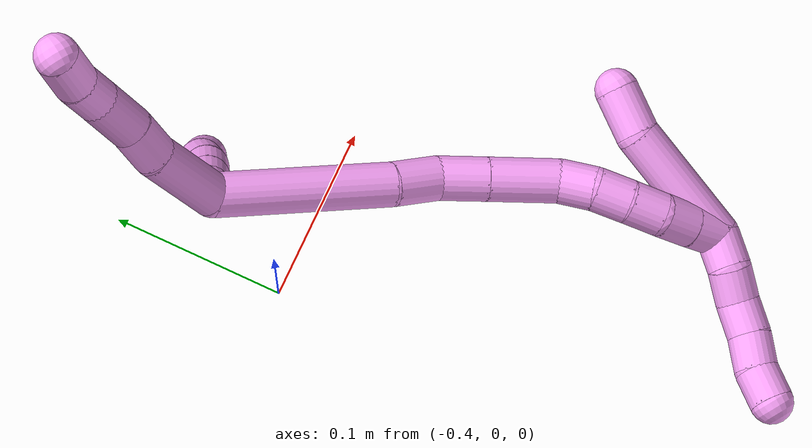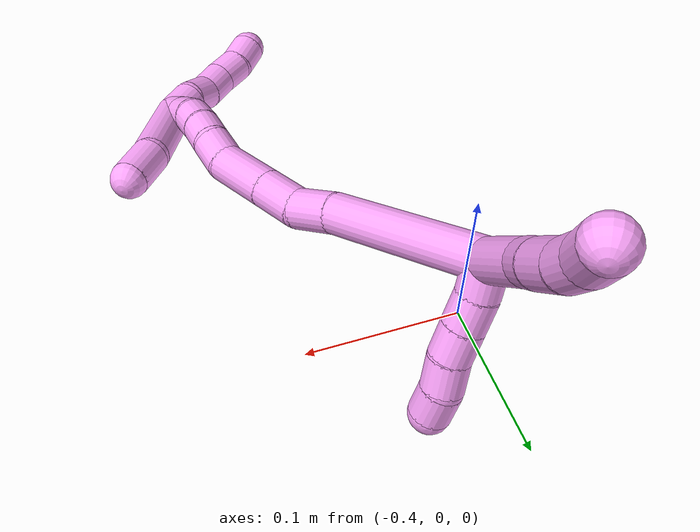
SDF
<sdf version="1.7">
 <world name="default">
  <model name="4">
   <static>0</static>
   <link name="4">
    <collision name="collision-cylinder-e_1_2_8">
     <pose>-0.010649 0.015468 -0.015764 -2.36567 -0.44928 1.01963</pose>
     <geometry><cylinder><radius>0.0125</radius><length>0.049036</length></cylinder></geometry>
     <surface>
      <friction><ode><mu>1.16</mu><mu2>1.16</mu2><slip1>0</slip1><slip2>0</slip2></ode></friction>
      <contact><ode><kp>1e+06</kp><kd>1</kd><max_vel>0</max_vel><min_depth>0.001</min_depth></ode></contact>
     </surface>
    </collision>
    <visual name="visual-cylinder-e_1_2_8">
     <pose>-0.010649 0.015468 -0.015764 -2.36567 -0.44928 1.01963</pose>
     <geometry><cylinder><radius>0.0125</radius><length>0.049036</length></cylinder></geometry>
     <material><ambient>1 0.65098 0.996078 1</ambient></material>
    </visual>
    <collision name="collision-cylinder-e_2_8_9">
     <pose>-0.024321 0.038757 -0.040198 -2.40765 -0.253373 0.639943</pose>
     <geometry><cylinder><radius>0.0125</radius><length>0.024125</length></cylinder></geometry>
     <surface>
      <friction><ode><mu>1.16</mu><mu2>1.16</mu2><slip1>0</slip1><slip2>0</slip2></ode></friction>
      <contact><ode><kp>1e+06</kp><kd>1</kd><max_vel>0</max_vel><min_depth>0.001</min_depth></ode></contact>
     </surface>
    </collision>
    <visual name="visual-cylinder-e_2_8_9">
     <pose>-0.024321 0.038757 -0.040198 -2.40765 -0.253373 0.639943</pose>
     <geometry><cylinder><radius>0.0125</radius><length>0.024125</length></cylinder></geometry>
     <material><ambient>1 0.65098 0.996078 1</ambient></material>
    </visual>
    <collision name="collision-cylinder-e_3_9_10">
     <pose>-0.032834 0.056149 -0.058736 -2.37142 -0.37996 0.885971</pose>
     <geometry><cylinder><radius>0.0125</radius><length>0.029604</length></cylinder></geometry>
     <surface>
      <friction><ode><mu>1.16</mu><mu2>1.16</mu2><slip1>0</slip1><slip2>0</slip2></ode></friction>
      <contact><ode><kp>1e+06</kp><kd>1</kd><max_vel>0</max_vel><min_depth>0.001</min_depth></ode></contact>
     </surface>
    </collision>
    <visual name="visual-cylinder-e_3_9_10">
     <pose>-0.032834 0.056149 -0.058736 -2.37142 -0.37996 0.885971</pose>
     <geometry><cylinder><radius>0.0125</radius><length>0.029604</length></cylinder></geometry>
     <material><ambient>1 0.65098 0.996078 1</ambient></material>
    </visual>
    <collision name="collision-cylinder-e_4_10_11">
     <pose>-0.042207 0.073732 -0.074535 -2.2081 -0.371436 0.71381</pose>
     <geometry><cylinder><radius>0.0125</radius><length>0.021396</length></cylinder></geometry>
     <surface>
      <friction><ode><mu>1.16</mu><mu2>1.16</mu2><slip1>0</slip1><slip2>0</slip2></ode></friction>
      <contact><ode><kp>1e+06</kp><kd>1</kd><max_vel>0</max_vel><min_depth>0.001</min_depth></ode></contact>
     </surface>
    </collision>
    <visual name="visual-cylinder-e_4_10_11">
     <pose>-0.042207 0.073732 -0.074535 -2.2081 -0.371436 0.71381</pose>
     <geometry><cylinder><radius>0.0125</radius><length>0.021396</length></cylinder></geometry>
     <material><ambient>1 0.65098 0.996078 1</ambient></material>
    </visual>
    <collision name="collision-cylinder-e_5_11_6">
     <pose>-0.04862 0.092088 -0.087781 -2.18633 -0.197072 0.377432</pose>
     <geometry><cylinder><radius>0.0125</radius><length>0.025839</length></cylinder></geometry>
     <surface>
      <friction><ode><mu>1.16</mu><mu2>1.16</mu2><slip1>0</slip1><slip2>0</slip2></ode></friction>
      <contact><ode><kp>1e+06</kp><kd>1</kd><max_vel>0</max_vel><min_depth>0.001</min_depth></ode></contact>
     </surface>
    </collision>
    <visual name="visual-cylinder-e_5_11_6">
     <pose>-0.04862 0.092088 -0.087781 -2.18633 -0.197072 0.377432</pose>
     <geometry><cylinder><radius>0.0125</radius><length>0.025839</length></cylinder></geometry>
     <material><ambient>1 0.65098 0.996078 1</ambient></material>
    </visual>
    <collision name="collision-cylinder-e_1_2_12">
     <pose>0.00167 -0.00931 -0.003245 1.90615 0.167749 0.235567</pose>
     <geometry><cylinder><radius>0.0125</radius><length>0.02</length></cylinder></geometry>
     <surface>
      <friction><ode><mu>1.16</mu><mu2>1.16</mu2><slip1>0</slip1><slip2>0</slip2></ode></friction>
      <contact><ode><kp>1e+06</kp><kd>1</kd><max_vel>0</max_vel><min_depth>0.001</min_depth></ode></contact>
     </surface>
    </collision>
    <visual name="visual-cylinder-e_1_2_12">
     <pose>0.00167 -0.00931 -0.003245 1.90615 0.167749 0.235567</pose>
     <geometry><cylinder><radius>0.0125</radius><length>0.02</length></cylinder></geometry>
     <material><ambient>1 0.65098 0.996078 1</ambient></material>
    </visual>
    <collision name="collision-cylinder-e_2_12_13">
     <pose>0.006227 -0.027572 -0.009887 1.93358 0.292973 0.421296</pose>
     <geometry><cylinder><radius>0.0125</radius><length>0.02</length></cylinder></geometry>
     <surface>
      <friction><ode><mu>1.16</mu><mu2>1.16</mu2><slip1>0</slip1><slip2>0</slip2></ode></friction>
      <contact><ode><kp>1e+06</kp><kd>1</kd><max_vel>0</max_vel><min_depth>0.001</min_depth></ode></contact>
     </surface>
    </collision>
    <visual name="visual-cylinder-e_2_12_13">
     <pose>0.006227 -0.027572 -0.009887 1.93358 0.292973 0.421296</pose>
     <geometry><cylinder><radius>0.0125</radius><length>0.02</length></cylinder></geometry>
     <material><ambient>1 0.65098 0.996078 1</ambient></material>
    </visual>
    <collision name="collision-cylinder-e_3_13_14">
     <pose>0.01197 -0.045494 -0.016656 1.93021 0.28945 0.414853</pose>
     <geometry><cylinder><radius>0.0125</radius><length>0.02</length></cylinder></geometry>
     <surface>
      <friction><ode><mu>1.16</mu><mu2>1.16</mu2><slip1>0</slip1><slip2>0</slip2></ode></friction>
      <contact><ode><kp>1e+06</kp><kd>1</kd><max_vel>0</max_vel><min_depth>0.001</min_depth></ode></contact>
     </surface>
    </collision>
    <visual name="visual-cylinder-e_3_13_14">
     <pose>0.01197 -0.045494 -0.016656 1.93021 0.28945 0.414853</pose>
     <geometry><cylinder><radius>0.0125</radius><length>0.02</length></cylinder></geometry>
     <material><ambient>1 0.65098 0.996078 1</ambient></material>
    </visual>
    <collision name="collision-cylinder-e_4_14_15">
     <pose>0.016112 -0.063868 -0.023177 1.89413 0.129181 0.179295</pose>
     <geometry><cylinder><radius>0.0125</radius><length>0.02</length></cylinder></geometry>
     <surface>
      <friction><ode><mu>1.16</mu><mu2>1.16</mu2><slip1>0</slip1><slip2>0</slip2></ode></friction>
      <contact><ode><kp>1e+06</kp><kd>1</kd><max_vel>0</max_vel><min_depth>0.001</min_depth></ode></contact>
     </surface>
    </collision>
    <visual name="visual-cylinder-e_4_14_15">
     <pose>0.016112 -0.063868 -0.023177 1.89413 0.129181 0.179295</pose>
     <geometry><cylinder><radius>0.0125</radius><length>0.02</length></cylinder></geometry>
     <material><ambient>1 0.65098 0.996078 1</ambient></material>
    </visual>
    <collision name="collision-cylinder-e_5_15_5">
     <pose>0.020399 -0.082735 -0.027526 1.69668 0.304577 0.344792</pose>
     <geometry><cylinder><radius>0.0125</radius><length>0.02</length></cylinder></geometry>
     <surface>
      <friction><ode><mu>1.16</mu><mu2>1.16</mu2><slip1>0</slip1><slip2>0</slip2></ode></friction>
      <contact><ode><kp>1e+06</kp><kd>1</kd><max_vel>0</max_vel><min_depth>0.001</min_depth></ode></contact>
     </surface>
    </collision>
    <visual name="visual-cylinder-e_5_15_5">
     <pose>0.020399 -0.082735 -0.027526 1.69668 0.304577 0.344792</pose>
     <geometry><cylinder><radius>0.0125</radius><length>0.02</length></cylinder></geometry>
     <material><ambient>1 0.65098 0.996078 1</ambient></material>
    </visual>
    <collision name="collision-cylinder-e_1_2_16">
     <pose>0.046045 -0.00925 0.021363 0.408626 1.10269 0.253478</pose>
     <geometry><cylinder><radius>0.0125</radius><length>0.103191</length></cylinder></geometry>
     <surface>
      <friction><ode><mu>1.16</mu><mu2>1.16</mu2><slip1>0</slip1><slip2>0</slip2></ode></friction>
      <contact><ode><kp>1e+06</kp><kd>1</kd><max_vel>0</max_vel><min_depth>0.001</min_depth></ode></contact>
     </surface>
    </collision>
    <visual name="visual-cylinder-e_1_2_16">
     <pose>0.046045 -0.00925 0.021363 0.408626 1.10269 0.253478</pose>
     <geometry><cylinder><radius>0.0125</radius><length>0.103191</length></cylinder></geometry>
     <material><ambient>1 0.65098 0.996078 1</ambient></material>
    </visual>
    <collision name="collision-cylinder-e_2_16_17">
     <pose>0.10472 -0.022392 0.047245 0.710959 1.12966 0.462118</pose>
     <geometry><cylinder><radius>0.0125</radius><length>0.027934</length></cylinder></geometry>
     <surface>
      <friction><ode><mu>1.16</mu><mu2>1.16</mu2><slip1>0</slip1><slip2>0</slip2></ode></friction>
      <contact><ode><kp>1e+06</kp><kd>1</kd><max_vel>0</max_vel><min_depth>0.001</min_depth></ode></contact>
     </surface>
    </collision>
    <visual name="visual-cylinder-e_2_16_17">
     <pose>0.10472 -0.022392 0.047245 0.710959 1.12966 0.462118</pose>
     <geometry><cylinder><radius>0.0125</radius><length>0.027934</length></cylinder></geometry>
     <material><ambient>1 0.65098 0.996078 1</ambient></material>
    </visual>
    <collision name="collision-cylinder-e_3_17_18">
     <pose>0.129379 -0.026269 0.059038 -0.001988 1.02685 -0.001121</pose>
     <geometry><cylinder><radius>0.0125</radius><length>0.028115</length></cylinder></geometry>
     <surface>
      <friction><ode><mu>1.16</mu><mu2>1.16</mu2><slip1>0</slip1><slip2>0</slip2></ode></friction>
      <contact><ode><kp>1e+06</kp><kd>1</kd><max_vel>0</max_vel><min_depth>0.001</min_depth></ode></contact>
     </surface>
    </collision>
    <visual name="visual-cylinder-e_3_17_18">
     <pose>0.129379 -0.026269 0.059038 -0.001988 1.02685 -0.001121</pose>
     <geometry><cylinder><radius>0.0125</radius><length>0.028115</length></cylinder></geometry>
     <material><ambient>1 0.65098 0.996078 1</ambient></material>
    </visual>
    <collision name="collision-cylinder-e_4_18_19">
     <pose>0.158541 -0.02639 0.076746 0.012976 1.02382 0.007291</pose>
     <geometry><cylinder><radius>0.0125</radius><length>0.04012</length></cylinder></geometry>
     <surface>
      <friction><ode><mu>1.16</mu><mu2>1.16</mu2><slip1>0</slip1><slip2>0</slip2></ode></friction>
      <contact><ode><kp>1e+06</kp><kd>1</kd><max_vel>0</max_vel><min_depth>0.001</min_depth></ode></contact>
     </surface>
    </collision>
    <visual name="visual-cylinder-e_4_18_19">
     <pose>0.158541 -0.02639 0.076746 0.012976 1.02382 0.007291</pose>
     <geometry><cylinder><radius>0.0125</radius><length>0.04012</length></cylinder></geometry>
     <material><ambient>1 0.65098 0.996078 1</ambient></material>
    </visual>
    <collision name="collision-cylinder-e_5_19_20">
     <pose>0.182789 -0.024381 0.094257 -0.294082 0.765992 -0.119203</pose>
     <geometry><cylinder><radius>0.0125</radius><length>0.020525</length></cylinder></geometry>
     <surface>
      <friction><ode><mu>1.16</mu><mu2>1.16</mu2><slip1>0</slip1><slip2>0</slip2></ode></friction>
      <contact><ode><kp>1e+06</kp><kd>1</kd><max_vel>0</max_vel><min_depth>0.001</min_depth></ode></contact>
     </surface>
    </collision>
    <visual name="visual-cylinder-e_5_19_20">
     <pose>0.182789 -0.024381 0.094257 -0.294082 0.765992 -0.119203</pose>
     <geometry><cylinder><radius>0.0125</radius><length>0.020525</length></cylinder></geometry>
     <material><ambient>1 0.65098 0.996078 1</ambient></material>
    </visual>
    <collision name="collision-cylinder-e_6_20_21">
     <pose>0.196238 -0.022386 0.109127 0.019074 0.682567 0.006775</pose>
     <geometry><cylinder><radius>0.0125</radius><length>0.020085</length></cylinder></geometry>
     <surface>
      <friction><ode><mu>1.16</mu><mu2>1.16</mu2><slip1>0</slip1><slip2>0</slip2></ode></friction>
      <contact><ode><kp>1e+06</kp><kd>1</kd><max_vel>0</max_vel><min_depth>0.001</min_depth></ode></contact>
     </surface>
    </collision>
    <visual name="visual-cylinder-e_6_20_21">
     <pose>0.196238 -0.022386 0.109127 0.019074 0.682567 0.006775</pose>
     <geometry><cylinder><radius>0.0125</radius><length>0.020085</length></cylinder></geometry>
     <material><ambient>1 0.65098 0.996078 1</ambient></material>
    </visual>
    <collision name="collision-cylinder-e_7_21_22">
     <pose>0.208951 -0.024069 0.124476 0.20033 0.691037 0.072321</pose>
     <geometry><cylinder><radius>0.0125</radius><length>0.020016</length></cylinder></geometry>
     <surface>
      <friction><ode><mu>1.16</mu><mu2>1.16</mu2><slip1>0</slip1><slip2>0</slip2></ode></friction>
      <contact><ode><kp>1e+06</kp><kd>1</kd><max_vel>0</max_vel><min_depth>0.001</min_depth></ode></contact>
     </surface>
    </collision>
    <visual name="visual-cylinder-e_7_21_22">
     <pose>0.208951 -0.024069 0.124476 0.20033 0.691037 0.072321</pose>
     <geometry><cylinder><radius>0.0125</radius><length>0.020016</length></cylinder></geometry>
     <material><ambient>1 0.65098 0.996078 1</ambient></material>
    </visual>
    <collision name="collision-cylinder-e_8_22_23">
     <pose>0.221763 -0.029875 0.138391 0.5916 0.698668 0.221113</pose>
     <geometry><cylinder><radius>0.0125</radius><length>0.020004</length></cylinder></geometry>
     <surface>
      <friction><ode><mu>1.16</mu><mu2>1.16</mu2><slip1>0</slip1><slip2>0</slip2></ode></friction>
      <contact><ode><kp>1e+06</kp><kd>1</kd><max_vel>0</max_vel><min_depth>0.001</min_depth></ode></contact>
     </surface>
    </collision>
    <visual name="visual-cylinder-e_8_22_23">
     <pose>0.221763 -0.029875 0.138391 0.5916 0.698668 0.221113</pose>
     <geometry><cylinder><radius>0.0125</radius><length>0.020004</length></cylinder></geometry>
     <material><ambient>1 0.65098 0.996078 1</ambient></material>
    </visual>
    <collision name="collision-cylinder-e_9_23_1">
     <pose>0.234856 -0.038461 0.150841 0.616151 0.728324 0.241397</pose>
     <geometry><cylinder><radius>0.0125</radius><length>0.020009</length></cylinder></geometry>
     <surface>
      <friction><ode><mu>1.16</mu><mu2>1.16</mu2><slip1>0</slip1><slip2>0</slip2></ode></friction>
      <contact><ode><kp>1e+06</kp><kd>1</kd><max_vel>0</max_vel><min_depth>0.001</min_depth></ode></contact>
     </surface>
    </collision>
    <visual name="visual-cylinder-e_9_23_1">
     <pose>0.234856 -0.038461 0.150841 0.616151 0.728324 0.241397</pose>
     <geometry><cylinder><radius>0.0125</radius><length>0.020009</length></cylinder></geometry>
     <material><ambient>1 0.65098 0.996078 1</ambient></material>
    </visual>
    <collision name="collision-cylinder-e_1_1_24">
     <pose>0.239389 -0.042528 0.166703 -0.025311 -0.214176 0.002721</pose>
     <geometry><cylinder><radius>0.0125</radius><length>0.02</length></cylinder></geometry>
     <surface>
      <friction><ode><mu>1.16</mu><mu2>1.16</mu2><slip1>0</slip1><slip2>0</slip2></ode></friction>
      <contact><ode><kp>1e+06</kp><kd>1</kd><max_vel>0</max_vel><min_depth>0.001</min_depth></ode></contact>
     </surface>
    </collision>
    <visual name="visual-cylinder-e_1_1_24">
     <pose>0.239389 -0.042528 0.166703 -0.025311 -0.214176 0.002721</pose>
     <geometry><cylinder><radius>0.0125</radius><length>0.02</length></cylinder></geometry>
     <material><ambient>1 0.65098 0.996078 1</ambient></material>
    </visual>
    <collision name="collision-cylinder-e_2_24_25">
     <pose>0.235024 -0.045247 0.185755 0.30921 -0.22592 -0.035356</pose>
     <geometry><cylinder><radius>0.0125</radius><length>0.02</length></cylinder></geometry>
     <surface>
      <friction><ode><mu>1.16</mu><mu2>1.16</mu2><slip1>0</slip1><slip2>0</slip2></ode></friction>
      <contact><ode><kp>1e+06</kp><kd>1</kd><max_vel>0</max_vel><min_depth>0.001</min_depth></ode></contact>
     </surface>
    </collision>
    <visual name="visual-cylinder-e_2_24_25">
     <pose>0.235024 -0.045247 0.185755 0.30921 -0.22592 -0.035356</pose>
     <geometry><cylinder><radius>0.0125</radius><length>0.02</length></cylinder></geometry>
     <material><ambient>1 0.65098 0.996078 1</ambient></material>
    </visual>
    <collision name="collision-cylinder-e_3_25_26">
     <pose>0.230539 -0.047813 0.204775 -0.040967 -0.226419 0.004658</pose>
     <geometry><cylinder><radius>0.0125</radius><length>0.02</length></cylinder></geometry>
     <surface>
      <friction><ode><mu>1.16</mu><mu2>1.16</mu2><slip1>0</slip1><slip2>0</slip2></ode></friction>
      <contact><ode><kp>1e+06</kp><kd>1</kd><max_vel>0</max_vel><min_depth>0.001</min_depth></ode></contact>
     </surface>
    </collision>
    <visual name="visual-cylinder-e_3_25_26">
     <pose>0.230539 -0.047813 0.204775 -0.040967 -0.226419 0.004658</pose>
     <geometry><cylinder><radius>0.0125</radius><length>0.02</length></cylinder></geometry>
     <material><ambient>1 0.65098 0.996078 1</ambient></material>
    </visual>
    <collision name="collision-cylinder-e_4_26_27">
     <pose>0.224669 -0.046643 0.2238 -0.082843 -0.370906 0.015551</pose>
     <geometry><cylinder><radius>0.0125</radius><length>0.02</length></cylinder></geometry>
     <surface>
      <friction><ode><mu>1.16</mu><mu2>1.16</mu2><slip1>0</slip1><slip2>0</slip2></ode></friction>
      <contact><ode><kp>1e+06</kp><kd>1</kd><max_vel>0</max_vel><min_depth>0.001</min_depth></ode></contact>
     </surface>
    </collision>
    <visual name="visual-cylinder-e_4_26_27">
     <pose>0.224669 -0.046643 0.2238 -0.082843 -0.370906 0.015551</pose>
     <geometry><cylinder><radius>0.0125</radius><length>0.02</length></cylinder></geometry>
     <material><ambient>1 0.65098 0.996078 1</ambient></material>
    </visual>
    <collision name="collision-cylinder-e_5_27_4">
     <pose>0.219641 -0.044252 0.242856 -0.16429 -0.140825 0.011613</pose>
     <geometry><cylinder><radius>0.0125</radius><length>0.02</length></cylinder></geometry>
     <surface>
      <friction><ode><mu>1.16</mu><mu2>1.16</mu2><slip1>0</slip1><slip2>0</slip2></ode></friction>
      <contact><ode><kp>1e+06</kp><kd>1</kd><max_vel>0</max_vel><min_depth>0.001</min_depth></ode></contact>
     </surface>
    </collision>
    <visual name="visual-cylinder-e_5_27_4">
     <pose>0.219641 -0.044252 0.242856 -0.16429 -0.140825 0.011613</pose>
     <geometry><cylinder><radius>0.0125</radius><length>0.02</length></cylinder></geometry>
     <material><ambient>1 0.65098 0.996078 1</ambient></material>
    </visual>
    <collision name="collision-cylinder-e_1_1_28">
     <pose>0.2348 -0.035174 0.121989 -2.9274 -0.185605 1.42706</pose>
     <geometry><cylinder><radius>0.0125</radius><length>0.072776</length></cylinder></geometry>
     <surface>
      <friction><ode><mu>1.16</mu><mu2>1.16</mu2><slip1>0</slip1><slip2>0</slip2></ode></friction>
      <contact><ode><kp>1e+06</kp><kd>1</kd><max_vel>0</max_vel><min_depth>0.001</min_depth></ode></contact>
     </surface>
    </collision>
    <visual name="visual-cylinder-e_1_1_28">
     <pose>0.2348 -0.035174 0.121989 -2.9274 -0.185605 1.42706</pose>
     <geometry><cylinder><radius>0.0125</radius><length>0.072776</length></cylinder></geometry>
     <material><ambient>1 0.65098 0.996078 1</ambient></material>
    </visual>
    <collision name="collision-cylinder-e_2_28_3">
     <pose>0.229466 -0.027323 0.073504 -3.12325 0.101652 -2.78493</pose>
     <geometry><cylinder><radius>0.0125</radius><length>0.027224</length></cylinder></geometry>
     <surface>
      <friction><ode><mu>1.16</mu><mu2>1.16</mu2><slip1>0</slip1><slip2>0</slip2></ode></friction>
      <contact><ode><kp>1e+06</kp><kd>1</kd><max_vel>0</max_vel><min_depth>0.001</min_depth></ode></contact>
     </surface>
    </collision>
    <visual name="visual-cylinder-e_2_28_3">
     <pose>0.229466 -0.027323 0.073504 -3.12325 0.101652 -2.78493</pose>
     <geometry><cylinder><radius>0.0125</radius><length>0.027224</length></cylinder></geometry>
     <material><ambient>1 0.65098 0.996078 1</ambient></material>
    </visual>
    <collision name="collision-sphere-3">
     <pose>0.230847 -0.027075 0.059964 0 -0 0</pose>
     <geometry><sphere><radius>0.0125</radius></sphere></geometry>
     <surface>
      <friction><ode><mu>1.16</mu><mu2>1.16</mu2><slip1>0</slip1><slip2>0</slip2></ode></friction>
      <contact><ode><kp>1e+06</kp><kd>1</kd><max_vel>0</max_vel><min_depth>0.001</min_depth></ode></contact>
     </surface>
    </collision>
    <visual name="visual-sphere-3">
     <pose>0.230847 -0.027075 0.059964 0 -0 0</pose>
     <geometry><sphere><radius>0.0125</radius></sphere></geometry>
     <material><ambient>1 0.65098 0.996078 1</ambient></material>
    </visual>
    <collision name="collision-sphere-28">
     <pose>0.228085 -0.027572 0.087043 0 -0 0</pose>
     <geometry><sphere><radius>0.0125</radius></sphere></geometry>
     <surface>
      <friction><ode><mu>1.16</mu><mu2>1.16</mu2><slip1>0</slip1><slip2>0</slip2></ode></friction>
      <contact><ode><kp>1e+06</kp><kd>1</kd><max_vel>0</max_vel><min_depth>0.001</min_depth></ode></contact>
     </surface>
    </collision>
    <visual name="visual-sphere-28">
     <pose>0.228085 -0.027572 0.087043 0 -0 0</pose>
     <geometry><sphere><radius>0.0125</radius></sphere></geometry>
     <material><ambient>1 0.65098 0.996078 1</ambient></material>
    </visual>
    <collision name="collision-sphere-4">
     <pose>0.218238 -0.042633 0.252623 0 -0 0</pose>
     <geometry><sphere><radius>0.0125</radius></sphere></geometry>
     <surface>
      <friction><ode><mu>1.16</mu><mu2>1.16</mu2><slip1>0</slip1><slip2>0</slip2></ode></friction>
      <contact><ode><kp>1e+06</kp><kd>1</kd><max_vel>0</max_vel><min_depth>0.001</min_depth></ode></contact>
     </surface>
    </collision>
    <visual name="visual-sphere-4">
     <pose>0.218238 -0.042633 0.252623 0 -0 0</pose>
     <geometry><sphere><radius>0.0125</radius></sphere></geometry>
     <material><ambient>1 0.65098 0.996078 1</ambient></material>
    </visual>
    <collision name="collision-sphere-27">
     <pose>0.221045 -0.045872 0.233088 0 -0 0</pose>
     <geometry><sphere><radius>0.0125</radius></sphere></geometry>
     <surface>
      <friction><ode><mu>1.16</mu><mu2>1.16</mu2><slip1>0</slip1><slip2>0</slip2></ode></friction>
      <contact><ode><kp>1e+06</kp><kd>1</kd><max_vel>0</max_vel><min_depth>0.001</min_depth></ode></contact>
     </surface>
    </collision>
    <visual name="visual-sphere-27">
     <pose>0.221045 -0.045872 0.233088 0 -0 0</pose>
     <geometry><sphere><radius>0.0125</radius></sphere></geometry>
     <material><ambient>1 0.65098 0.996078 1</ambient></material>
    </visual>
    <collision name="collision-sphere-26">
     <pose>0.228294 -0.047414 0.214512 0 -0 0</pose>
     <geometry><sphere><radius>0.0125</radius></sphere></geometry>
     <surface>
      <friction><ode><mu>1.16</mu><mu2>1.16</mu2><slip1>0</slip1><slip2>0</slip2></ode></friction>
      <contact><ode><kp>1e+06</kp><kd>1</kd><max_vel>0</max_vel><min_depth>0.001</min_depth></ode></contact>
     </surface>
    </collision>
    <visual name="visual-sphere-26">
     <pose>0.228294 -0.047414 0.214512 0 -0 0</pose>
     <geometry><sphere><radius>0.0125</radius></sphere></geometry>
     <material><ambient>1 0.65098 0.996078 1</ambient></material>
    </visual>
    <collision name="collision-sphere-25">
     <pose>0.232784 -0.048212 0.195039 0 -0 0</pose>
     <geometry><sphere><radius>0.0125</radius></sphere></geometry>
     <surface>
      <friction><ode><mu>1.16</mu><mu2>1.16</mu2><slip1>0</slip1><slip2>0</slip2></ode></friction>
      <contact><ode><kp>1e+06</kp><kd>1</kd><max_vel>0</max_vel><min_depth>0.001</min_depth></ode></contact>
     </surface>
    </collision>
    <visual name="visual-sphere-25">
     <pose>0.232784 -0.048212 0.195039 0 -0 0</pose>
     <geometry><sphere><radius>0.0125</radius></sphere></geometry>
     <material><ambient>1 0.65098 0.996078 1</ambient></material>
    </visual>
    <collision name="collision-sphere-24">
     <pose>0.237264 -0.042281 0.176471 0 -0 0</pose>
     <geometry><sphere><radius>0.0125</radius></sphere></geometry>
     <surface>
      <friction><ode><mu>1.16</mu><mu2>1.16</mu2><slip1>0</slip1><slip2>0</slip2></ode></friction>
      <contact><ode><kp>1e+06</kp><kd>1</kd><max_vel>0</max_vel><min_depth>0.001</min_depth></ode></contact>
     </surface>
    </collision>
    <visual name="visual-sphere-24">
     <pose>0.237264 -0.042281 0.176471 0 -0 0</pose>
     <geometry><sphere><radius>0.0125</radius></sphere></geometry>
     <material><ambient>1 0.65098 0.996078 1</ambient></material>
    </visual>
    <collision name="collision-sphere-1">
     <pose>0.241515 -0.042775 0.156935 0 -0 0</pose>
     <geometry><sphere><radius>0.0125</radius></sphere></geometry>
     <surface>
      <friction><ode><mu>1.16</mu><mu2>1.16</mu2><slip1>0</slip1><slip2>0</slip2></ode></friction>
      <contact><ode><kp>1e+06</kp><kd>1</kd><max_vel>0</max_vel><min_depth>0.001</min_depth></ode></contact>
     </surface>
    </collision>
    <visual name="visual-sphere-1">
     <pose>0.241515 -0.042775 0.156935 0 -0 0</pose>
     <geometry><sphere><radius>0.0125</radius></sphere></geometry>
     <material><ambient>1 0.65098 0.996078 1</ambient></material>
    </visual>
    <collision name="collision-sphere-23">
     <pose>0.228197 -0.034146 0.144748 0 -0 0</pose>
     <geometry><sphere><radius>0.0125</radius></sphere></geometry>
     <surface>
      <friction><ode><mu>1.16</mu><mu2>1.16</mu2><slip1>0</slip1><slip2>0</slip2></ode></friction>
      <contact><ode><kp>1e+06</kp><kd>1</kd><max_vel>0</max_vel><min_depth>0.001</min_depth></ode></contact>
     </surface>
    </collision>
    <visual name="visual-sphere-23">
     <pose>0.228197 -0.034146 0.144748 0 -0 0</pose>
     <geometry><sphere><radius>0.0125</radius></sphere></geometry>
     <material><ambient>1 0.65098 0.996078 1</ambient></material>
    </visual>
    <collision name="collision-sphere-22">
     <pose>0.21533 -0.025604 0.132034 0 -0 0</pose>
     <geometry><sphere><radius>0.0125</radius></sphere></geometry>
     <surface>
      <friction><ode><mu>1.16</mu><mu2>1.16</mu2><slip1>0</slip1><slip2>0</slip2></ode></friction>
      <contact><ode><kp>1e+06</kp><kd>1</kd><max_vel>0</max_vel><min_depth>0.001</min_depth></ode></contact>
     </surface>
    </collision>
    <visual name="visual-sphere-22">
     <pose>0.21533 -0.025604 0.132034 0 -0 0</pose>
     <geometry><sphere><radius>0.0125</radius></sphere></geometry>
     <material><ambient>1 0.65098 0.996078 1</ambient></material>
    </visual>
    <collision name="collision-sphere-21">
     <pose>0.202573 -0.022535 0.116918 0 -0 0</pose>
     <geometry><sphere><radius>0.0125</radius></sphere></geometry>
     <surface>
      <friction><ode><mu>1.16</mu><mu2>1.16</mu2><slip1>0</slip1><slip2>0</slip2></ode></friction>
      <contact><ode><kp>1e+06</kp><kd>1</kd><max_vel>0</max_vel><min_depth>0.001</min_depth></ode></contact>
     </surface>
    </collision>
    <visual name="visual-sphere-21">
     <pose>0.202573 -0.022535 0.116918 0 -0 0</pose>
     <geometry><sphere><radius>0.0125</radius></sphere></geometry>
     <material><ambient>1 0.65098 0.996078 1</ambient></material>
    </visual>
    <collision name="collision-sphere-6">
     <pose>-0.051149 0.102432 -0.095097 0 -0 0</pose>
     <geometry><sphere><radius>0.0125</radius></sphere></geometry>
     <surface>
      <friction><ode><mu>1.16</mu><mu2>1.16</mu2><slip1>0</slip1><slip2>0</slip2></ode></friction>
      <contact><ode><kp>1e+06</kp><kd>1</kd><max_vel>0</max_vel><min_depth>0.001</min_depth></ode></contact>
     </surface>
    </collision>
    <visual name="visual-sphere-6">
     <pose>-0.051149 0.102432 -0.095097 0 -0 0</pose>
     <geometry><sphere><radius>0.0125</radius></sphere></geometry>
     <material><ambient>1 0.65098 0.996078 1</ambient></material>
    </visual>
    <collision name="collision-sphere-11">
     <pose>-0.04609 0.081744 -0.080466 0 -0 0</pose>
     <geometry><sphere><radius>0.0125</radius></sphere></geometry>
     <surface>
      <friction><ode><mu>1.16</mu><mu2>1.16</mu2><slip1>0</slip1><slip2>0</slip2></ode></friction>
      <contact><ode><kp>1e+06</kp><kd>1</kd><max_vel>0</max_vel><min_depth>0.001</min_depth></ode></contact>
     </surface>
    </collision>
    <visual name="visual-sphere-11">
     <pose>-0.04609 0.081744 -0.080466 0 -0 0</pose>
     <geometry><sphere><radius>0.0125</radius></sphere></geometry>
     <material><ambient>1 0.65098 0.996078 1</ambient></material>
    </visual>
    <collision name="collision-sphere-10">
     <pose>-0.038324 0.06572 -0.068603 0 -0 0</pose>
     <geometry><sphere><radius>0.0125</radius></sphere></geometry>
     <surface>
      <friction><ode><mu>1.16</mu><mu2>1.16</mu2><slip1>0</slip1><slip2>0</slip2></ode></friction>
      <contact><ode><kp>1e+06</kp><kd>1</kd><max_vel>0</max_vel><min_depth>0.001</min_depth></ode></contact>
     </surface>
    </collision>
    <visual name="visual-sphere-10">
     <pose>-0.038324 0.06572 -0.068603 0 -0 0</pose>
     <geometry><sphere><radius>0.0125</radius></sphere></geometry>
     <material><ambient>1 0.65098 0.996078 1</ambient></material>
    </visual>
    <collision name="collision-sphere-9">
     <pose>-0.027345 0.046578 -0.048869 0 -0 0</pose>
     <geometry><sphere><radius>0.0125</radius></sphere></geometry>
     <surface>
      <friction><ode><mu>1.16</mu><mu2>1.16</mu2><slip1>0</slip1><slip2>0</slip2></ode></friction>
      <contact><ode><kp>1e+06</kp><kd>1</kd><max_vel>0</max_vel><min_depth>0.001</min_depth></ode></contact>
     </surface>
    </collision>
    <visual name="visual-sphere-9">
     <pose>-0.027345 0.046578 -0.048869 0 -0 0</pose>
     <geometry><sphere><radius>0.0125</radius></sphere></geometry>
     <material><ambient>1 0.65098 0.996078 1</ambient></material>
    </visual>
    <collision name="collision-sphere-2">
     <geometry><sphere><radius>0.0125</radius></sphere></geometry>
     <surface>
      <friction><ode><mu>1.16</mu><mu2>1.16</mu2><slip1>0</slip1><slip2>0</slip2></ode></friction>
      <contact><ode><kp>1e+06</kp><kd>1</kd><max_vel>0</max_vel><min_depth>0.001</min_depth></ode></contact>
     </surface>
    </collision>
    <visual name="visual-sphere-2">
     <geometry><sphere><radius>0.0125</radius></sphere></geometry>
     <material><ambient>1 0.65098 0.996078 1</ambient></material>
    </visual>
    <collision name="collision-sphere-19">
     <pose>0.175674 -0.026525 0.087178 0 -0 0</pose>
     <geometry><sphere><radius>0.0125</radius></sphere></geometry>
     <surface>
      <friction><ode><mu>1.16</mu><mu2>1.16</mu2><slip1>0</slip1><slip2>0</slip2></ode></friction>
      <contact><ode><kp>1e+06</kp><kd>1</kd><max_vel>0</max_vel><min_depth>0.001</min_depth></ode></contact>
     </surface>
    </collision>
    <visual name="visual-sphere-19">
     <pose>0.175674 -0.026525 0.087178 0 -0 0</pose>
     <geometry><sphere><radius>0.0125</radius></sphere></geometry>
     <material><ambient>1 0.65098 0.996078 1</ambient></material>
    </visual>
    <collision name="collision-sphere-8">
     <pose>-0.021297 0.030935 -0.031527 0 -0 0</pose>
     <geometry><sphere><radius>0.0125</radius></sphere></geometry>
     <surface>
      <friction><ode><mu>1.16</mu><mu2>1.16</mu2><slip1>0</slip1><slip2>0</slip2></ode></friction>
      <contact><ode><kp>1e+06</kp><kd>1</kd><max_vel>0</max_vel><min_depth>0.001</min_depth></ode></contact>
     </surface>
    </collision>
    <visual name="visual-sphere-8">
     <pose>-0.021297 0.030935 -0.031527 0 -0 0</pose>
     <geometry><sphere><radius>0.0125</radius></sphere></geometry>
     <material><ambient>1 0.65098 0.996078 1</ambient></material>
    </visual>
    <collision name="collision-sphere-12">
     <pose>0.003339 -0.018621 -0.00649 0 -0 0</pose>
     <geometry><sphere><radius>0.0125</radius></sphere></geometry>
     <surface>
      <friction><ode><mu>1.16</mu><mu2>1.16</mu2><slip1>0</slip1><slip2>0</slip2></ode></friction>
      <contact><ode><kp>1e+06</kp><kd>1</kd><max_vel>0</max_vel><min_depth>0.001</min_depth></ode></contact>
     </surface>
    </collision>
    <visual name="visual-sphere-12">
     <pose>0.003339 -0.018621 -0.00649 0 -0 0</pose>
     <geometry><sphere><radius>0.0125</radius></sphere></geometry>
     <material><ambient>1 0.65098 0.996078 1</ambient></material>
    </visual>
    <collision name="collision-sphere-13">
     <pose>0.009115 -0.036522 -0.013285 0 -0 0</pose>
     <geometry><sphere><radius>0.0125</radius></sphere></geometry>
     <surface>
      <friction><ode><mu>1.16</mu><mu2>1.16</mu2><slip1>0</slip1><slip2>0</slip2></ode></friction>
      <contact><ode><kp>1e+06</kp><kd>1</kd><max_vel>0</max_vel><min_depth>0.001</min_depth></ode></contact>
     </surface>
    </collision>
    <visual name="visual-sphere-13">
     <pose>0.009115 -0.036522 -0.013285 0 -0 0</pose>
     <geometry><sphere><radius>0.0125</radius></sphere></geometry>
     <material><ambient>1 0.65098 0.996078 1</ambient></material>
    </visual>
    <collision name="collision-sphere-14">
     <pose>0.014824 -0.054466 -0.020027 0 -0 0</pose>
     <geometry><sphere><radius>0.0125</radius></sphere></geometry>
     <surface>
      <friction><ode><mu>1.16</mu><mu2>1.16</mu2><slip1>0</slip1><slip2>0</slip2></ode></friction>
      <contact><ode><kp>1e+06</kp><kd>1</kd><max_vel>0</max_vel><min_depth>0.001</min_depth></ode></contact>
     </surface>
    </collision>
    <visual name="visual-sphere-14">
     <pose>0.014824 -0.054466 -0.020027 0 -0 0</pose>
     <geometry><sphere><radius>0.0125</radius></sphere></geometry>
     <material><ambient>1 0.65098 0.996078 1</ambient></material>
    </visual>
    <collision name="collision-sphere-15">
     <pose>0.0174 -0.073271 -0.026328 0 -0 0</pose>
     <geometry><sphere><radius>0.0125</radius></sphere></geometry>
     <surface>
      <friction><ode><mu>1.16</mu><mu2>1.16</mu2><slip1>0</slip1><slip2>0</slip2></ode></friction>
      <contact><ode><kp>1e+06</kp><kd>1</kd><max_vel>0</max_vel><min_depth>0.001</min_depth></ode></contact>
     </surface>
    </collision>
    <visual name="visual-sphere-15">
     <pose>0.0174 -0.073271 -0.026328 0 -0 0</pose>
     <geometry><sphere><radius>0.0125</radius></sphere></geometry>
     <material><ambient>1 0.65098 0.996078 1</ambient></material>
    </visual>
    <collision name="collision-sphere-5">
     <pose>0.023398 -0.0922 -0.028724 0 -0 0</pose>
     <geometry><sphere><radius>0.0125</radius></sphere></geometry>
     <surface>
      <friction><ode><mu>1.16</mu><mu2>1.16</mu2><slip1>0</slip1><slip2>0</slip2></ode></friction>
      <contact><ode><kp>1e+06</kp><kd>1</kd><max_vel>0</max_vel><min_depth>0.001</min_depth></ode></contact>
     </surface>
    </collision>
    <visual name="visual-sphere-5">
     <pose>0.023398 -0.0922 -0.028724 0 -0 0</pose>
     <geometry><sphere><radius>0.0125</radius></sphere></geometry>
     <material><ambient>1 0.65098 0.996078 1</ambient></material>
    </visual>
    <collision name="collision-sphere-16">
     <pose>0.09209 -0.0185 0.042726 0 -0 0</pose>
     <geometry><sphere><radius>0.0125</radius></sphere></geometry>
     <surface>
      <friction><ode><mu>1.16</mu><mu2>1.16</mu2><slip1>0</slip1><slip2>0</slip2></ode></friction>
      <contact><ode><kp>1e+06</kp><kd>1</kd><max_vel>0</max_vel><min_depth>0.001</min_depth></ode></contact>
     </surface>
    </collision>
    <visual name="visual-sphere-16">
     <pose>0.09209 -0.0185 0.042726 0 -0 0</pose>
     <geometry><sphere><radius>0.0125</radius></sphere></geometry>
     <material><ambient>1 0.65098 0.996078 1</ambient></material>
    </visual>
    <collision name="collision-sphere-17">
     <pose>0.11735 -0.026283 0.051763 0 -0 0</pose>
     <geometry><sphere><radius>0.0125</radius></sphere></geometry>
     <surface>
      <friction><ode><mu>1.16</mu><mu2>1.16</mu2><slip1>0</slip1><slip2>0</slip2></ode></friction>
      <contact><ode><kp>1e+06</kp><kd>1</kd><max_vel>0</max_vel><min_depth>0.001</min_depth></ode></contact>
     </surface>
    </collision>
    <visual name="visual-sphere-17">
     <pose>0.11735 -0.026283 0.051763 0 -0 0</pose>
     <geometry><sphere><radius>0.0125</radius></sphere></geometry>
     <material><ambient>1 0.65098 0.996078 1</ambient></material>
    </visual>
    <collision name="collision-sphere-18">
     <pose>0.141408 -0.026254 0.066313 0 -0 0</pose>
     <geometry><sphere><radius>0.0125</radius></sphere></geometry>
     <surface>
      <friction><ode><mu>1.16</mu><mu2>1.16</mu2><slip1>0</slip1><slip2>0</slip2></ode></friction>
      <contact><ode><kp>1e+06</kp><kd>1</kd><max_vel>0</max_vel><min_depth>0.001</min_depth></ode></contact>
     </surface>
    </collision>
    <visual name="visual-sphere-18">
     <pose>0.141408 -0.026254 0.066313 0 -0 0</pose>
     <geometry><sphere><radius>0.0125</radius></sphere></geometry>
     <material><ambient>1 0.65098 0.996078 1</ambient></material>
    </visual>
    <collision name="collision-sphere-20">
     <pose>0.189903 -0.022237 0.101336 0 -0 0</pose>
     <geometry><sphere><radius>0.0125</radius></sphere></geometry>
     <surface>
      <friction><ode><mu>1.16</mu><mu2>1.16</mu2><slip1>0</slip1><slip2>0</slip2></ode></friction>
      <contact><ode><kp>1e+06</kp><kd>1</kd><max_vel>0</max_vel><min_depth>0.001</min_depth></ode></contact>
     </surface>
    </collision>
    <visual name="visual-sphere-20">
     <pose>0.189903 -0.022237 0.101336 0 -0 0</pose>
     <geometry><sphere><radius>0.0125</radius></sphere></geometry>
     <material><ambient>1 0.65098 0.996078 1</ambient></material>
    </visual>
    <inertial>
     <pose>0.109191 -0.015035 0.057427 0 -0 0</pose>
     <mass>0.75</mass>
     <inertia><ixx>0.000158</ixx><ixy>0</ixy><ixz>0</ixz><iyy>0.000173</iyy><iyz>0</iyz><izz>-8e-05</izz></inertia>
    </inertial>
   </link>
   <pose>-0.383417 0.044386 0.108409 1.68567 0.101233 -0.579295</pose>
  </model>
 </world>
</sdf>
